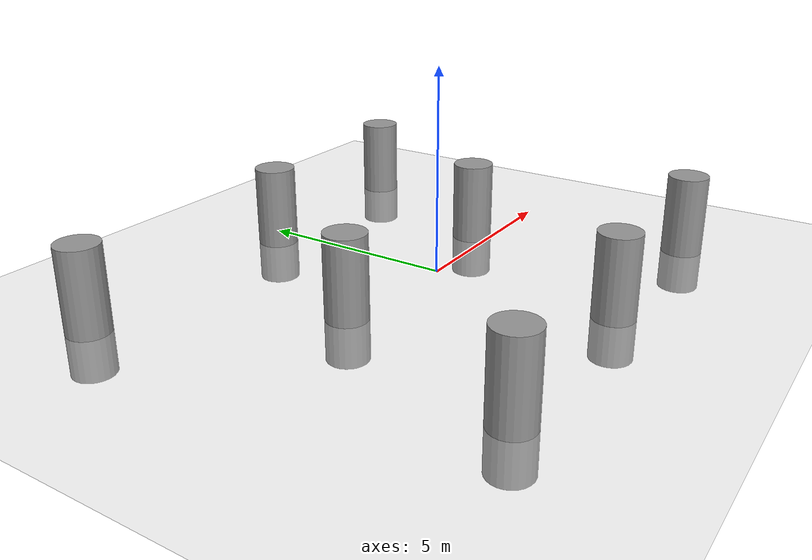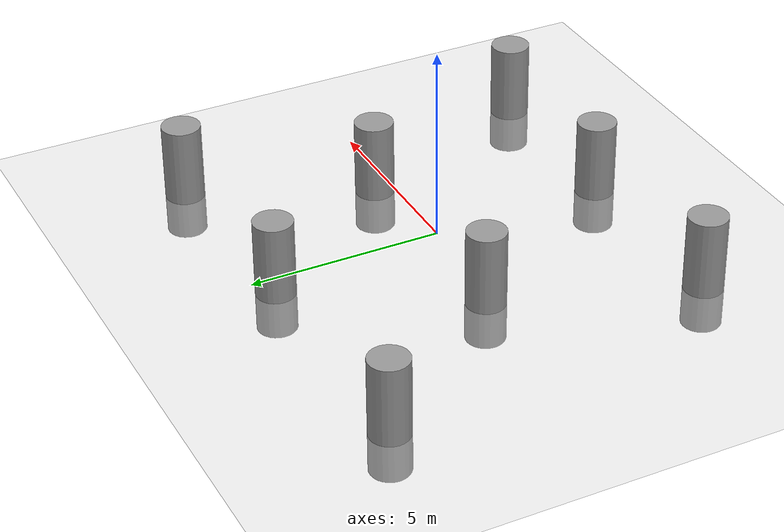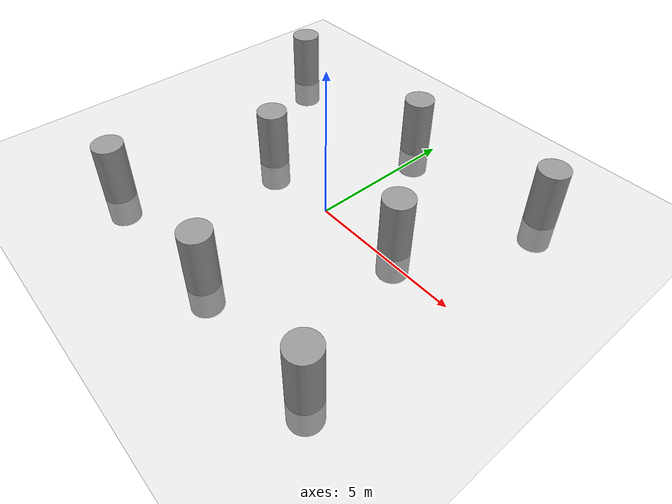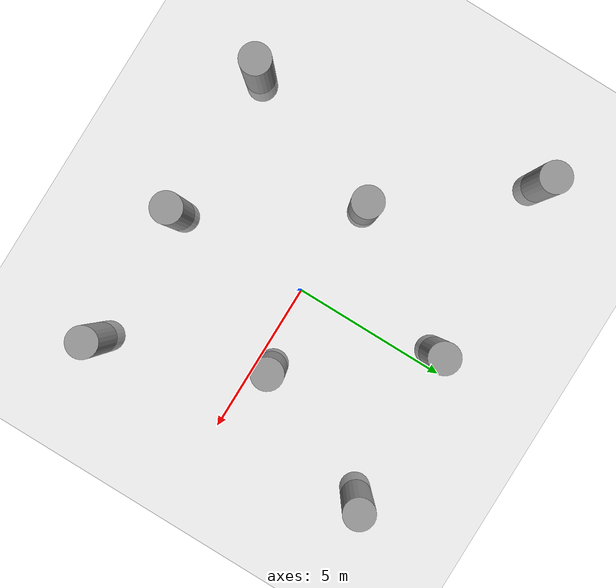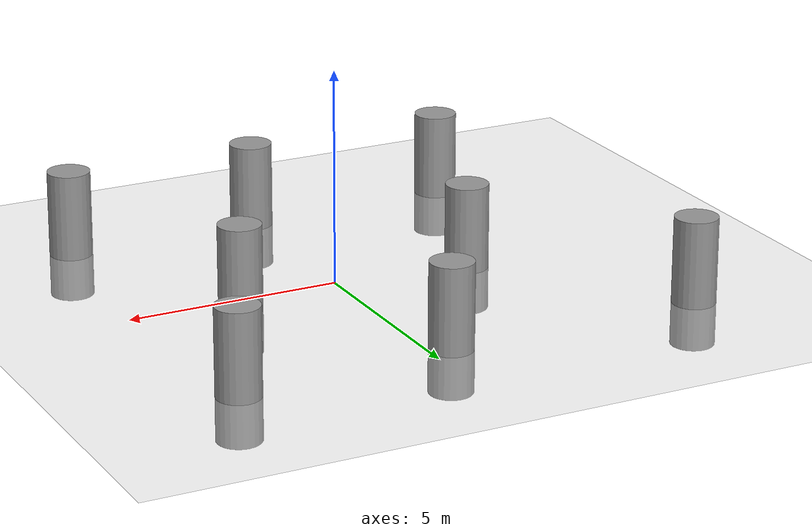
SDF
<sdf version="1.6">
 <world name="default">
  <light name="sun" type="directional">
   <pose>0 0 10 0 -0 0</pose>
   <diffuse>0.8 0.8 0.8 1</diffuse>
   <specular>0.2 0.2 0.2 1</specular>
   <attenuation>
    <range>1000</range>
    <constant>0.9</constant>
    <linear>0.01</linear>
    <quadratic>0.001</quadratic>
   </attenuation>
   <direction>-0.5 0.1 -0.9</direction>
  </light>
  <gravity>0 0 -9.8</gravity>
  <magnetic_field>6e-06 2.3e-05 -4.2e-05</magnetic_field>
  <atmosphere type="adiabatic"/>
  <physics name="default_physics" default="0" type="ode">
   <max_step_size>0.004</max_step_size>
   <real_time_factor>1</real_time_factor>
   <real_time_update_rate>250</real_time_update_rate>
  </physics>
  <scene><ambient>0.4 0.4 0.4 1</ambient><background>0.7 0.7 0.7 1</background><shadows>1</shadows></scene>
  <spherical_coordinates>
   <surface_model>EARTH_WGS84</surface_model>
   <latitude_deg>0</latitude_deg>
   <longitude_deg>0</longitude_deg>
   <elevation>0</elevation>
   <heading_deg>0</heading_deg>
  </spherical_coordinates>
  <model name="my_ground_plane">
   <static>1</static>
   <link name="link">
    <collision name="collision">
     <geometry><plane><normal>0 0 1</normal><size>100 100</size></plane></geometry>
     <surface><friction><ode><mu>100</mu><mu2>50</mu2></ode></friction></surface>
    </collision>
    <visual name="visual">
     <cast_shadows>0</cast_shadows>
     <geometry><plane><normal>0 0 1</normal><size>100 100</size></plane></geometry>
     <material>
      <script>
       <uri>model://my_ground_plane/materials/scripts</uri>
       <uri>model://my_ground_plane/materials/textures/</uri>
       <name>MyGroundPlane/Image</name>
      </script>
     </material>
    </visual>
   </link>
  </model>
  <model name="my_world_0">
   <link name="link">
    <inertial>
     <mass>1</mass>
     <inertia><ixx>0.145833</ixx><ixy>0</ixy><ixz>0</ixz><iyy>0.145833</iyy><iyz>0</iyz><izz>0.125</izz></inertia>
    </inertial>
    <pose>-2.50908 -0 0 0 -0 0</pose>
    <visual name="visual">
     <geometry><cylinder><radius>0.5</radius><length>3</length></cylinder></geometry>
     <material>
      <script><name>Gazebo/Grey</name><uri>file://media/materials/scripts/gazebo.material</uri></script>
      <shader type="pixel"><normal_map>__default__</normal_map></shader>
      <ambient>0.3 0.3 0.3 1</ambient>
      <diffuse>0.7 0.7 0.7 1</diffuse>
      <specular>0.01 0.01 0.01 1</specular>
      <emissive>0 0 0 1</emissive>
     </material>
    </visual>
    <collision name="collision">
     <geometry><cylinder><radius>0.5</radius><length>3</length></cylinder></geometry>
     <surface>
      <friction>
       <ode><mu>1</mu><mu2>1</mu2><fdir1>0 0 0</fdir1><slip1>0</slip1><slip2>0</slip2></ode>
       <torsional>
        <coefficient>1</coefficient>
        <patch_radius>0</patch_radius>
        <surface_radius>0</surface_radius>
        <use_patch_radius>1</use_patch_radius>
        <ode><slip>0</slip></ode>
       </torsional>
      </friction>
      <bounce><restitution_coefficient>0</restitution_coefficient><threshold>1e+06</threshold></bounce>
      <contact>
       <collide_without_contact>0</collide_without_contact>
       <collide_without_contact_bitmask>1</collide_without_contact_bitmask>
       <collide_bitmask>1</collide_bitmask>
       <ode>
        <soft_cfm>0</soft_cfm>
        <soft_erp>0.2</soft_erp>
        <kp>1e+13</kp>
        <kd>1</kd>
        <max_vel>0.01</max_vel>
        <min_depth>0</min_depth>
       </ode>
       <bullet>
        <split_impulse>1</split_impulse>
        <split_impulse_penetration_threshold>-0.01</split_impulse_penetration_threshold>
        <soft_cfm>0</soft_cfm>
        <soft_erp>0.2</soft_erp>
        <kp>1e+13</kp>
        <kd>1</kd>
       </bullet>
      </contact>
     </surface>
    </collision>
   </link>
   <static>0</static>
   <pose>2.51865 -4.50344 0.5 0 -0 0</pose>
  </model>
  <model name="my_world_0_clone">
   <link name="link">
    <inertial>
     <mass>1</mass>
     <inertia><ixx>0.145833</ixx><ixy>0</ixy><ixz>0</ixz><iyy>0.145833</iyy><iyz>0</iyz><izz>0.125</izz></inertia>
    </inertial>
    <pose>-2.50908 -0 0 0 -0 0</pose>
    <visual name="visual">
     <geometry><cylinder><radius>0.5</radius><length>3</length></cylinder></geometry>
     <material>
      <script><name>Gazebo/Grey</name><uri>file://media/materials/scripts/gazebo.material</uri></script>
      <shader type="pixel"><normal_map>__default__</normal_map></shader>
      <ambient>0.3 0.3 0.3 1</ambient>
      <diffuse>0.7 0.7 0.7 1</diffuse>
      <specular>0.01 0.01 0.01 1</specular>
      <emissive>0 0 0 1</emissive>
     </material>
    </visual>
    <collision name="collision">
     <geometry><cylinder><radius>0.5</radius><length>3</length></cylinder></geometry>
     <surface>
      <friction>
       <ode><mu>1</mu><mu2>1</mu2><fdir1>0 0 0</fdir1><slip1>0</slip1><slip2>0</slip2></ode>
       <torsional>
        <coefficient>1</coefficient>
        <patch_radius>0</patch_radius>
        <surface_radius>0</surface_radius>
        <use_patch_radius>1</use_patch_radius>
        <ode><slip>0</slip></ode>
       </torsional>
      </friction>
      <bounce><restitution_coefficient>0</restitution_coefficient><threshold>1e+06</threshold></bounce>
      <contact>
       <collide_without_contact>0</collide_without_contact>
       <collide_without_contact_bitmask>1</collide_without_contact_bitmask>
       <collide_bitmask>1</collide_bitmask>
       <ode>
        <soft_cfm>0</soft_cfm>
        <soft_erp>0.2</soft_erp>
        <kp>1e+13</kp>
        <kd>1</kd>
        <max_vel>0.01</max_vel>
        <min_depth>0</min_depth>
       </ode>
       <bullet>
        <split_impulse>1</split_impulse>
        <split_impulse_penetration_threshold>-0.01</split_impulse_penetration_threshold>
        <soft_cfm>0</soft_cfm>
        <soft_erp>0.2</soft_erp>
        <kp>1e+13</kp>
        <kd>1</kd>
       </bullet>
      </contact>
     </surface>
    </collision>
   </link>
   <static>0</static>
   <pose>7.08762 -4.53643 0.5 0 -0 0</pose>
  </model>
  <model name="my_world_0_clone_0">
   <link name="link">
    <inertial>
     <mass>1</mass>
     <inertia><ixx>0.145833</ixx><ixy>0</ixy><ixz>0</ixz><iyy>0.145833</iyy><iyz>0</iyz><izz>0.125</izz></inertia>
    </inertial>
    <pose>-2.50908 -0 0 0 -0 0</pose>
    <visual name="visual">
     <geometry><cylinder><radius>0.5</radius><length>3</length></cylinder></geometry>
     <material>
      <script><name>Gazebo/Grey</name><uri>file://media/materials/scripts/gazebo.material</uri></script>
      <shader type="pixel"><normal_map>__default__</normal_map></shader>
      <ambient>0.3 0.3 0.3 1</ambient>
      <diffuse>0.7 0.7 0.7 1</diffuse>
      <specular>0.01 0.01 0.01 1</specular>
      <emissive>0 0 0 1</emissive>
     </material>
    </visual>
    <collision name="collision">
     <geometry><cylinder><radius>0.5</radius><length>3</length></cylinder></geometry>
     <surface>
      <friction>
       <ode><mu>1</mu><mu2>1</mu2><fdir1>0 0 0</fdir1><slip1>0</slip1><slip2>0</slip2></ode>
       <torsional>
        <coefficient>1</coefficient>
        <patch_radius>0</patch_radius>
        <surface_radius>0</surface_radius>
        <use_patch_radius>1</use_patch_radius>
        <ode><slip>0</slip></ode>
       </torsional>
      </friction>
      <bounce><restitution_coefficient>0</restitution_coefficient><threshold>1e+06</threshold></bounce>
      <contact>
       <collide_without_contact>0</collide_without_contact>
       <collide_without_contact_bitmask>1</collide_without_contact_bitmask>
       <collide_bitmask>1</collide_bitmask>
       <ode>
        <soft_cfm>0</soft_cfm>
        <soft_erp>0.2</soft_erp>
        <kp>1e+13</kp>
        <kd>1</kd>
        <max_vel>0.01</max_vel>
        <min_depth>0</min_depth>
       </ode>
       <bullet>
        <split_impulse>1</split_impulse>
        <split_impulse_penetration_threshold>-0.01</split_impulse_penetration_threshold>
        <soft_cfm>0</soft_cfm>
        <soft_erp>0.2</soft_erp>
        <kp>1e+13</kp>
        <kd>1</kd>
       </bullet>
      </contact>
     </surface>
    </collision>
   </link>
   <static>0</static>
   <pose>-2.45845 -4.58022 0.5 0 -0 0</pose>
  </model>
  <model name="my_world_0_clone_1">
   <link name="link">
    <inertial>
     <mass>1</mass>
     <inertia><ixx>0.145833</ixx><ixy>0</ixy><ixz>0</ixz><iyy>0.145833</iyy><iyz>0</iyz><izz>0.125</izz></inertia>
    </inertial>
    <pose>-2.50908 -0 0 0 -0 0</pose>
    <visual name="visual">
     <geometry><cylinder><radius>0.5</radius><length>3</length></cylinder></geometry>
     <material>
      <script><name>Gazebo/Grey</name><uri>file://media/materials/scripts/gazebo.material</uri></script>
      <shader type="pixel"><normal_map>__default__</normal_map></shader>
      <ambient>0.3 0.3 0.3 1</ambient>
      <diffuse>0.7 0.7 0.7 1</diffuse>
      <specular>0.01 0.01 0.01 1</specular>
      <emissive>0 0 0 1</emissive>
     </material>
    </visual>
    <collision name="collision">
     <geometry><cylinder><radius>0.5</radius><length>3</length></cylinder></geometry>
     <surface>
      <friction>
       <ode><mu>1</mu><mu2>1</mu2><fdir1>0 0 0</fdir1><slip1>0</slip1><slip2>0</slip2></ode>
       <torsional>
        <coefficient>1</coefficient>
        <patch_radius>0</patch_radius>
        <surface_radius>0</surface_radius>
        <use_patch_radius>1</use_patch_radius>
        <ode><slip>0</slip></ode>
       </torsional>
      </friction>
      <bounce><restitution_coefficient>0</restitution_coefficient><threshold>1e+06</threshold></bounce>
      <contact>
       <collide_without_contact>0</collide_without_contact>
       <collide_without_contact_bitmask>1</collide_without_contact_bitmask>
       <collide_bitmask>1</collide_bitmask>
       <ode>
        <soft_cfm>0</soft_cfm>
        <soft_erp>0.2</soft_erp>
        <kp>1e+13</kp>
        <kd>1</kd>
        <max_vel>0.01</max_vel>
        <min_depth>0</min_depth>
       </ode>
       <bullet>
        <split_impulse>1</split_impulse>
        <split_impulse_penetration_threshold>-0.01</split_impulse_penetration_threshold>
        <soft_cfm>0</soft_cfm>
        <soft_erp>0.2</soft_erp>
        <kp>1e+13</kp>
        <kd>1</kd>
       </bullet>
      </contact>
     </surface>
    </collision>
   </link>
   <static>0</static>
   <pose>-0.666919 0.346619 0.5 0 -0 0</pose>
  </model>
  <model name="my_world_0_clone_2">
   <link name="link">
    <inertial>
     <mass>1</mass>
     <inertia><ixx>0.145833</ixx><ixy>0</ixy><ixz>0</ixz><iyy>0.145833</iyy><iyz>0</iyz><izz>0.125</izz></inertia>
    </inertial>
    <pose>-2.50908 -0 0 0 -0 0</pose>
    <visual name="visual">
     <geometry><cylinder><radius>0.5</radius><length>3</length></cylinder></geometry>
     <material>
      <script><name>Gazebo/Grey</name><uri>file://media/materials/scripts/gazebo.material</uri></script>
      <shader type="pixel"><normal_map>__default__</normal_map></shader>
      <ambient>0.3 0.3 0.3 1</ambient>
      <diffuse>0.7 0.7 0.7 1</diffuse>
      <specular>0.01 0.01 0.01 1</specular>
      <emissive>0 0 0 1</emissive>
     </material>
    </visual>
    <collision name="collision">
     <geometry><cylinder><radius>0.5</radius><length>3</length></cylinder></geometry>
     <surface>
      <friction>
       <ode><mu>1</mu><mu2>1</mu2><fdir1>0 0 0</fdir1><slip1>0</slip1><slip2>0</slip2></ode>
       <torsional>
        <coefficient>1</coefficient>
        <patch_radius>0</patch_radius>
        <surface_radius>0</surface_radius>
        <use_patch_radius>1</use_patch_radius>
        <ode><slip>0</slip></ode>
       </torsional>
      </friction>
      <bounce><restitution_coefficient>0</restitution_coefficient><threshold>1e+06</threshold></bounce>
      <contact>
       <collide_without_contact>0</collide_without_contact>
       <collide_without_contact_bitmask>1</collide_without_contact_bitmask>
       <collide_bitmask>1</collide_bitmask>
       <ode>
        <soft_cfm>0</soft_cfm>
        <soft_erp>0.2</soft_erp>
        <kp>1e+13</kp>
        <kd>1</kd>
        <max_vel>0.01</max_vel>
        <min_depth>0</min_depth>
       </ode>
       <bullet>
        <split_impulse>1</split_impulse>
        <split_impulse_penetration_threshold>-0.01</split_impulse_penetration_threshold>
        <soft_cfm>0</soft_cfm>
        <soft_erp>0.2</soft_erp>
        <kp>1e+13</kp>
        <kd>1</kd>
       </bullet>
      </contact>
     </surface>
    </collision>
   </link>
   <static>0</static>
   <pose>5.06098 0.477298 0.5 0 -0 0</pose>
  </model>
  <model name="my_world_0_clone_3">
   <link name="link">
    <inertial>
     <mass>1</mass>
     <inertia><ixx>0.145833</ixx><ixy>0</ixy><ixz>0</ixz><iyy>0.145833</iyy><iyz>0</iyz><izz>0.125</izz></inertia>
    </inertial>
    <pose>-2.50908 -0 0 0 -0 0</pose>
    <visual name="visual">
     <geometry><cylinder><radius>0.5</radius><length>3</length></cylinder></geometry>
     <material>
      <script><name>Gazebo/Grey</name><uri>file://media/materials/scripts/gazebo.material</uri></script>
      <shader type="pixel"><normal_map>__default__</normal_map></shader>
      <ambient>0.3 0.3 0.3 1</ambient>
      <diffuse>0.7 0.7 0.7 1</diffuse>
      <specular>0.01 0.01 0.01 1</specular>
      <emissive>0 0 0 1</emissive>
     </material>
    </visual>
    <collision name="collision">
     <geometry><cylinder><radius>0.5</radius><length>3</length></cylinder></geometry>
     <surface>
      <friction>
       <ode><mu>1</mu><mu2>1</mu2><fdir1>0 0 0</fdir1><slip1>0</slip1><slip2>0</slip2></ode>
       <torsional>
        <coefficient>1</coefficient>
        <patch_radius>0</patch_radius>
        <surface_radius>0</surface_radius>
        <use_patch_radius>1</use_patch_radius>
        <ode><slip>0</slip></ode>
       </torsional>
      </friction>
      <bounce><restitution_coefficient>0</restitution_coefficient><threshold>1e+06</threshold></bounce>
      <contact>
       <collide_without_contact>0</collide_without_contact>
       <collide_without_contact_bitmask>1</collide_without_contact_bitmask>
       <collide_bitmask>1</collide_bitmask>
       <ode>
        <soft_cfm>0</soft_cfm>
        <soft_erp>0.2</soft_erp>
        <kp>1e+13</kp>
        <kd>1</kd>
        <max_vel>0.01</max_vel>
        <min_depth>0</min_depth>
       </ode>
       <bullet>
        <split_impulse>1</split_impulse>
        <split_impulse_penetration_threshold>-0.01</split_impulse_penetration_threshold>
        <soft_cfm>0</soft_cfm>
        <soft_erp>0.2</soft_erp>
        <kp>1e+13</kp>
        <kd>1</kd>
       </bullet>
      </contact>
     </surface>
    </collision>
   </link>
   <static>0</static>
   <pose>-4.11388 4.56828 0.5 0 -0 0</pose>
  </model>
  <model name="my_world_0_clone_4">
   <link name="link">
    <inertial>
     <mass>1</mass>
     <inertia><ixx>0.145833</ixx><ixy>0</ixy><ixz>0</ixz><iyy>0.145833</iyy><iyz>0</iyz><izz>0.125</izz></inertia>
    </inertial>
    <pose>-2.50908 -0 0 0 -0 0</pose>
    <visual name="visual">
     <geometry><cylinder><radius>0.5</radius><length>3</length></cylinder></geometry>
     <material>
      <script><name>Gazebo/Grey</name><uri>file://media/materials/scripts/gazebo.material</uri></script>
      <shader type="pixel"><normal_map>__default__</normal_map></shader>
      <ambient>0.3 0.3 0.3 1</ambient>
      <diffuse>0.7 0.7 0.7 1</diffuse>
      <specular>0.01 0.01 0.01 1</specular>
      <emissive>0 0 0 1</emissive>
     </material>
    </visual>
    <collision name="collision">
     <geometry><cylinder><radius>0.5</radius><length>3</length></cylinder></geometry>
     <surface>
      <friction>
       <ode><mu>1</mu><mu2>1</mu2><fdir1>0 0 0</fdir1><slip1>0</slip1><slip2>0</slip2></ode>
       <torsional>
        <coefficient>1</coefficient>
        <patch_radius>0</patch_radius>
        <surface_radius>0</surface_radius>
        <use_patch_radius>1</use_patch_radius>
        <ode><slip>0</slip></ode>
       </torsional>
      </friction>
      <bounce><restitution_coefficient>0</restitution_coefficient><threshold>1e+06</threshold></bounce>
      <contact>
       <collide_without_contact>0</collide_without_contact>
       <collide_without_contact_bitmask>1</collide_without_contact_bitmask>
       <collide_bitmask>1</collide_bitmask>
       <ode>
        <soft_cfm>0</soft_cfm>
        <soft_erp>0.2</soft_erp>
        <kp>1e+13</kp>
        <kd>1</kd>
        <max_vel>0.01</max_vel>
        <min_depth>0</min_depth>
       </ode>
       <bullet>
        <split_impulse>1</split_impulse>
        <split_impulse_penetration_threshold>-0.01</split_impulse_penetration_threshold>
        <soft_cfm>0</soft_cfm>
        <soft_erp>0.2</soft_erp>
        <kp>1e+13</kp>
        <kd>1</kd>
       </bullet>
      </contact>
     </surface>
    </collision>
   </link>
   <static>0</static>
   <pose>1.99534 4.58076 0.5 0 -0 0</pose>
  </model>
  <model name="my_world_0_clone_5">
   <link name="link">
    <inertial>
     <mass>1</mass>
     <inertia><ixx>0.145833</ixx><ixy>0</ixy><ixz>0</ixz><iyy>0.145833</iyy><iyz>0</iyz><izz>0.125</izz></inertia>
    </inertial>
    <pose>-2.50908 -0 0 0 -0 0</pose>
    <visual name="visual">
     <geometry><cylinder><radius>0.5</radius><length>3</length></cylinder></geometry>
     <material>
      <script><name>Gazebo/Grey</name><uri>file://media/materials/scripts/gazebo.material</uri></script>
      <shader type="pixel"><normal_map>__default__</normal_map></shader>
      <ambient>0.3 0.3 0.3 1</ambient>
      <diffuse>0.7 0.7 0.7 1</diffuse>
      <specular>0.01 0.01 0.01 1</specular>
      <emissive>0 0 0 1</emissive>
     </material>
    </visual>
    <collision name="collision">
     <geometry><cylinder><radius>0.5</radius><length>3</length></cylinder></geometry>
     <surface>
      <friction>
       <ode><mu>1</mu><mu2>1</mu2><fdir1>0 0 0</fdir1><slip1>0</slip1><slip2>0</slip2></ode>
       <torsional>
        <coefficient>1</coefficient>
        <patch_radius>0</patch_radius>
        <surface_radius>0</surface_radius>
        <use_patch_radius>1</use_patch_radius>
        <ode><slip>0</slip></ode>
       </torsional>
      </friction>
      <bounce><restitution_coefficient>0</restitution_coefficient><threshold>1e+06</threshold></bounce>
      <contact>
       <collide_without_contact>0</collide_without_contact>
       <collide_without_contact_bitmask>1</collide_without_contact_bitmask>
       <collide_bitmask>1</collide_bitmask>
       <ode>
        <soft_cfm>0</soft_cfm>
        <soft_erp>0.2</soft_erp>
        <kp>1e+13</kp>
        <kd>1</kd>
        <max_vel>0.01</max_vel>
        <min_depth>0</min_depth>
       </ode>
       <bullet>
        <split_impulse>1</split_impulse>
        <split_impulse_penetration_threshold>-0.01</split_impulse_penetration_threshold>
        <soft_cfm>0</soft_cfm>
        <soft_erp>0.2</soft_erp>
        <kp>1e+13</kp>
        <kd>1</kd>
       </bullet>
      </contact>
     </surface>
    </collision>
   </link>
   <static>0</static>
   <pose>7.09033 4.84651 0.5 0 -0 0</pose>
  </model>
 </world>
</sdf>
